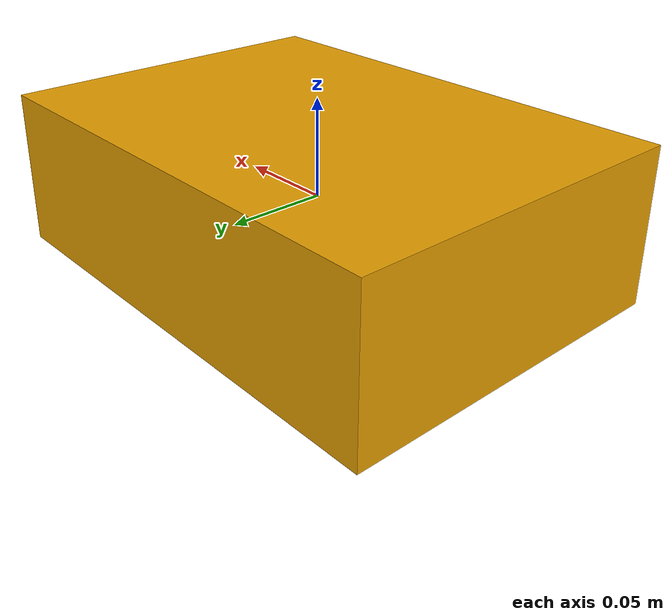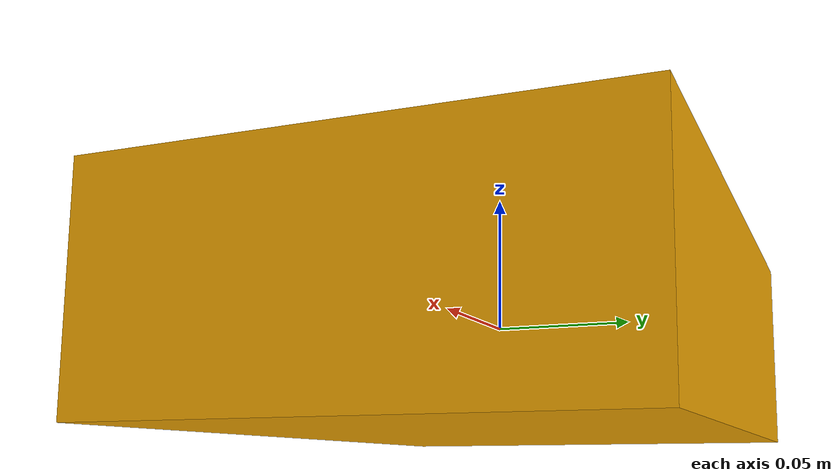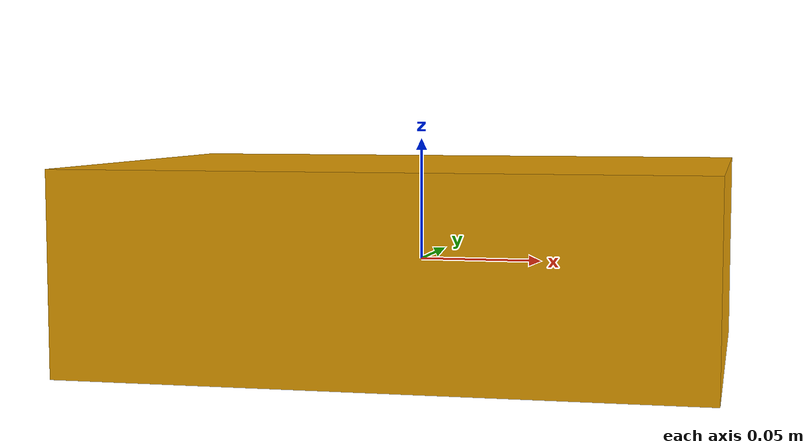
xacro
<?xml version="1.0"?>
<robot xmlns:xacro="http://www.ros.org/wiki/xacro" name="line_follower_v4_v5">
  <!-- V4-V5: Line Array + Forward/Downward AprilTag Vision Camera -->
  <link name="base_link">
    <visual><geometry><box size="0.25 0.18 0.08"/></geometry></visual>
    <inertial><mass value="1.5"/><inertia ixx="0.004" ixy="0" ixz="0" iyy="0.007" iyz="0" izz="0.009"/></inertial>
  </link>

  <!-- Tag Recognition Camera Link -->
  <link name="tag_camera_link"/>
  <joint name="tag_camera_joint" type="fixed">
    <parent link="base_link"/>
    <child link="tag_camera_link"/>
    <origin xyz="0.12 0 0.06" rpy="0 0.4 0"/>
  </joint>
</robot>
